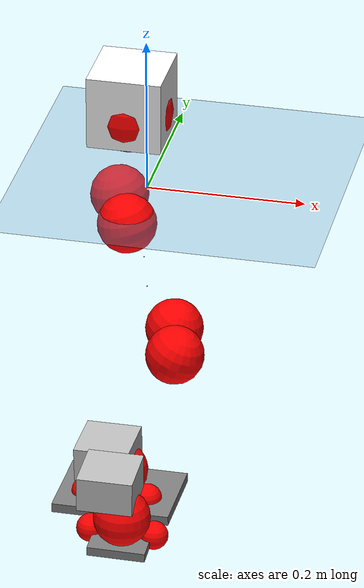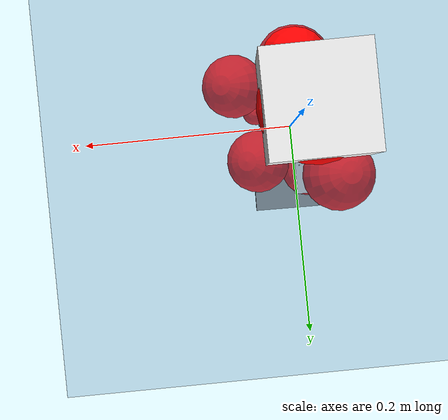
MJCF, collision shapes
<mujoco model="pi_12dof_release_v1">
  <compiler angle="radian" assetdir="assets" balanceinertia="true" inertiafromgeom="false"/>

  <option timestep="0.005" density="1.2" viscosity="2e-05"/>

  <size nkey="1"/>

  <visual>
    <quality shadowsize="8192"/>
    <map shadowclip="0.5"/>
  </visual>

  <default>
    <default class="/">
      <joint armature="0.01" damping="0.01" frictionloss="0.01"/>
      <geom contype="0" conaffinity="0" group="1" solref="-1000 -80"/>
      <site size="0.01 0.005 0.005" group="5"/>
      <general forcelimited="true" biastype="affine" gainprm="20" biasprm="0 -20 -0.5"/>
      <default class="foot">
        <geom size="0.0845 0.036 0.005" type="box" condim="6" group="4" priority="1" friction="0.9 0.2 0.2" solimp="0.015 1 0.005"/>
      </default>
      <default class="reward_collision_sphere">
        <geom group="5" rgba="1 0 0 1"/>
      </default>
    </default>
  </default>

  <asset>
    <texture type="skybox" colorspace="auto" name="//unnamed_texture_0" builtin="gradient" rgb1="0.95 0.95 0.95" rgb2="0.95 0.95 0.95" width="100" height="600"/>
    <texture type="2d" colorspace="auto" name="texplane" builtin="checker" rgb1="0.345 0.575 0.748" rgb2="0.345 0.575 0.748" markrgb="1 1 1" width="512" height="512"/>
    <material name="MatPlane" class="/" texture="texplane" texuniform="true" texrepeat="2 2" specular="0.9"/>
    <mesh name="baselink_1" class="/" file="baselink_1.STL"/>
    <mesh name="r_hip_pitch_link" class="/" file="r_hip_pitch_link.STL"/>
    <mesh name="r_hip_roll_link" class="/" file="r_hip_roll_link.STL"/>
    <mesh name="r_thigh_link" class="/" file="r_thigh_link.STL"/>
    <mesh name="r_calf_link" class="/" file="r_calf_link.STL"/>
    <mesh name="r_ankle_pitch_link" class="/" file="r_ankle_pitch_link.STL"/>
    <mesh name="r_ankle_roll_link" class="/" file="r_ankle_roll_link.STL"/>
    <mesh name="l_hip_pitch_link" class="/" file="l_hip_pitch_link.STL"/>
    <mesh name="l_hip_roll_link" class="/" file="l_hip_roll_link.STL"/>
    <mesh name="l_thigh_link" class="/" file="l_thigh_link.STL"/>
    <mesh name="l_calf_link" class="/" file="l_calf_link.STL"/>
    <mesh name="l_ankle_pitch_link" class="/" file="l_ankle_pitch_link.STL"/>
    <mesh name="l_ankle_roll_link" class="/" file="l_ankle_roll_link.STL"/>
  </asset>

  <worldbody>
    <geom name="floor" class="/" size="100 100 0.125" type="plane" group="0" material="MatPlane"/>
    <light name="toplight_shadow" class="/" pos="0 0 5" dir="0.0990148 0.0990148 -0.990148" type="directional" ambient="0.04 0.04 0.04" diffuse="0.55 0.55 0.55" specular="0.12 0.12 0.12"/>
    <light name="toplight_fill" class="/" pos="0 0 5" dir="0.0990148 0.0990148 -0.990148" type="directional" castshadow="false" ambient="0.04 0.04 0.04" diffuse="0.3 0.3 0.3" specular="0.08 0.08 0.08"/>
    <body name="trunk" pos="-0.0165554 -0.00980285 0.00483016" quat="0.999993 -0.00354686 0.000161269 0.00150392">
      <inertial pos="0.00103891 0.00477228 0.0607231" quat="0.653561 0.0179508 -0.00167843 0.756659" mass="1.72326" diaginertia="0.000565768 0.000871882 0.0302691"/>
      <joint name="//unnamed_joint_0" type="free"/>
      <geom name="//unnamed_geom_1" class="/" type="mesh" density="0" rgba="1 1 1 1" mesh="baselink_1"/>
      <geom name="//unnamed_geom_2" class="/" size="0.0466488 0.0466488 0.0466488" pos="0 0 0.120221" type="box" rgba="1 1 1 1"/>
      <geom name="//unnamed_geom_3" class="reward_collision_sphere" size="0.0513137" pos="0 0 0.105193"/>
      <site name="imu" class="/" pos="-0.040916 0.0302207 0.0903428" size="0.00932975"/>
      <camera name="track" class="/" pos="0 -1.35517 0" quat="0.707107 0.707107 0 0" mode="trackcom"/>
      <camera name="ego_camera" class="/" pos="0.0463935 0 0.270497" quat="-0.5 -0.5 0.5 0.5"/>
      <body name="r_hip_pitch_link" pos="-0.00460655 -0.0179236 -0.0374077" quat="0.992188 -0.00267955 -0.124506 0.00735274">
        <inertial pos="0.0180469 -0.0274393 0.00256877" quat="-0.0261981 0.70943 -0.0371845 0.703307" mass="0.344395" diaginertia="1.12511e-05 1.72743e-05 0.000716759"/>
        <joint name="r_hip_pitch_joint" class="/" pos="0 0 0" axis="0.00529147 -0.99708 -0.0761774" stiffness="0.0264813" range="-2.0977 0.984983" armature="0.00972739" damping="0" frictionloss="0.00881303"/>
        <geom name="//unnamed_geom_4" class="/" type="mesh" density="0" rgba="0.75294 0.75294 0.75294 1" mesh="r_hip_pitch_link"/>
        <geom name="//unnamed_geom_5" class="/" size="0.000466488 0.000466488 0.000466488" type="box" rgba="0.75294 0.75294 0.75294 1"/>
        <body name="r_hip_roll_link" pos="0.0131159 -0.0366154 0.011698" quat="0.999987 0.00431916 0.000693069 -0.00276493">
          <inertial pos="0.0035765 0.000437934 -0.0728066" quat="0.69863 -0.0415641 -0.120495 0.704038" mass="0.332521" diaginertia="3.21519e-05 4.46339e-05 0.0011481"/>
          <joint name="r_hip_roll_joint" class="/" pos="0 0 0" axis="-0.996987 0.0693602 0.034729" range="-0.233239 0.170417" armature="0.00394427" damping="0.056289" frictionloss="0.0158617"/>
          <geom name="//unnamed_geom_6" class="/" type="mesh" density="0" rgba="0.75294 0.75294 0.75294 1" mesh="r_hip_roll_link"/>
          <geom name="//unnamed_geom_7" class="/" size="0.000466488 0.000466488 0.000466488" type="box" rgba="0.75294 0.75294 0.75294 1"/>
          <geom name="//unnamed_geom_8" class="reward_collision_sphere" size="0.037319"/>
          <body name="r_thigh_link" pos="-0.00391445 0.0189793 -0.0998598" quat="0.999976 -0.00408764 0.00374337 0.0041698">
            <inertial pos="-0.010935 0.00835287 -0.069266" quat="0.706346 0.703723 -0.0412578 0.0644009" mass="0.0651683" diaginertia="1.12807e-05 1.10577e-05 0.000448102"/>
            <joint name="r_thigh_joint" class="/" pos="0 0 0" axis="-0.048713 0.0363988 -0.998149" stiffness="0.0905955" range="-0.579409 0.235721" armature="0.00781504" damping="0" frictionloss="0.0143531"/>
            <geom name="//unnamed_geom_9" class="/" type="mesh" density="0" rgba="0.75294 0.75294 0.75294 1" mesh="r_thigh_link"/>
            <geom name="//unnamed_geom_10" class="/" size="0.000466488 0.000466488 0.000466488" type="box" rgba="0.75294 0.75294 0.75294 1"/>
            <body name="r_calf_link" pos="0.0187079 -0.02007 -0.0902613" quat="0.947879 -0.000985678 0.318624 0.00181487">
              <inertial pos="-0.0184842 -0.00894364 -0.087674" quat="0.998221 0.055636 0.0209644 -0.00441064" mass="0.474276" diaginertia="0.000262078 0.000452674 0.00103918"/>
              <joint name="r_calf_joint" class="/" pos="0 0 0" axis="-0.0867209 -0.99623 0.00224579" stiffness="0.0552923" range="-1.55167 0.644173" armature="0.0045857" damping="0.0361752" frictionloss="0.0123545"/>
              <geom name="//unnamed_geom_11" class="/" type="mesh" density="0" rgba="0.75294 0.75294 0.75294 1" mesh="r_calf_link"/>
              <geom name="//unnamed_geom_12" class="/" size="0.000466488 0.000466488 0.000466488" type="box" rgba="0.75294 0.75294 0.75294 1"/>
              <geom name="//unnamed_geom_13" class="reward_collision_sphere" size="0.037319"/>
              <body name="r_ankle_pitch_link" pos="0.00237509 0.00854556 -0.222683" quat="0.98014 0.000330782 -0.1983 0.00128223">
                <inertial pos="0.0142771 -0.0171308 -0.00813495" quat="0.00309404 0.706558 0.00636007 0.70762" mass="0.127495" diaginertia="2.71096e-05 2.58518e-05 0.000824173"/>
                <joint name="r_ankle_pitch_joint" class="/" pos="0 0 0" axis="-0.0220965 -0.997832 -0.0619962" range="-1.50516 0.521079" armature="0.0158853" damping="0" frictionloss="0.0158138"/>
                <geom name="//unnamed_geom_14" class="/" type="mesh" density="0" rgba="0.75294 0.75294 0.75294 1" mesh="r_ankle_pitch_link"/>
                <geom name="//unnamed_geom_15" class="/" size="0.036386 0.037319 0.0233244" type="box" rgba="0.75294 0.75294 0.75294 1"/>
                <body name="r_ankle_roll_link" pos="0.0484958 -0.0065994 -0.0157808" quat="0.999958 -0.00405541 0.00734705 0.00379563">
                  <inertial pos="-0.0343527 0.0132292 -0.0373226" quat="0.585684 0.428332 0.428963 0.538049" mass="0.543262" diaginertia="9.48759e-05 0.000127177 0.0018016"/>
                  <joint name="r_ankle_roll_joint" class="/" pos="0 0 0" axis="-0.995719 -0.0300118 0.0874236" stiffness="0.0628219" range="-0.210443 0.277323" armature="0.0055635" damping="0" frictionloss="0.0122898"/>
                  <geom name="//unnamed_geom_16" class="/" type="mesh" density="0" rgba="0.75294 0.75294 0.75294 1" mesh="r_ankle_roll_link"/>
                  <geom name="//unnamed_geom_17" class="/" type="mesh" rgba="0.75294 0.75294 0.75294 1" mesh="r_ankle_roll_link"/>
                  <geom name="right_foot" class="foot" size="0.0378626 0.0344913 0.00590745" pos="-0.0315475 0 -0.0661215"/>
                  <geom name="//unnamed_geom_19" class="reward_collision_sphere" size="0.037319" pos="-0.030929 0 -0.0300552"/>
                  <geom name="//unnamed_geom_20" class="reward_collision_sphere" size="0.0186595" pos="0.00927869 0.0135517 -0.0601104"/>
                  <geom name="//unnamed_geom_21" class="reward_collision_sphere" size="0.0186595" pos="-0.0742295 0.0135517 -0.0601104"/>
                  <site name="right_foot" class="foot" pos="-0.0315475 0 -0.0661215" size="0.00932975"/>
                </body>
              </body>
            </body>
          </body>
        </body>
      </body>
      <body name="l_hip_pitch_link" pos="-0.0199047 0.0320614 -0.0427549" quat="0.991857 0.00251341 -0.127318 -0.00207509">
        <inertial pos="-0.0171682 0.0561489 -0.0025538" quat="-0.0139851 0.682831 0.101017 0.723424" mass="0.371278" diaginertia="1.31961e-05 1.51427e-05 0.000954216"/>
        <joint name="l_hip_pitch_joint" class="/" pos="0 0 0" axis="0.0812551 0.99528 0.0530668" stiffness="0.0835155" range="-0.903866 1.63263" armature="0.0171121" damping="0" frictionloss="0.00416817"/>
        <geom name="//unnamed_geom_22" class="/" type="mesh" density="0" rgba="0.75294 0.75294 0.75294 1" mesh="l_hip_pitch_link"/>
        <geom name="//unnamed_geom_23" class="/" size="0.000466488 0.000466488 0.000466488" type="box" rgba="0.75294 0.75294 0.75294 1"/>
        <body name="l_hip_roll_link" pos="-0.0117991 0.0287996 -0.00137623" quat="0.999989 0.00303007 -0.00349798 -0.00115088">
          <inertial pos="-0.00854911 -0.0178592 -0.0958132" quat="0.721096 -0.0909897 -0.137379 0.672955" mass="0.23664" diaginertia="2.90709e-05 3.0832e-05 0.00100499"/>
          <joint name="l_hip_roll_joint" class="/" pos="0 0 0" axis="-0.998327 -0.0173011 0.0551693" stiffness="0.0633316" range="-0.383879 -0.104867" armature="0.00136654" damping="0.0618444" frictionloss="0.01499"/>
          <geom name="//unnamed_geom_24" class="/" type="mesh" density="0" rgba="0.75294 0.75294 0.75294 1" mesh="l_hip_roll_link"/>
          <geom name="//unnamed_geom_25" class="/" size="0.000466488 0.000466488 0.000466488" type="box" rgba="0.75294 0.75294 0.75294 1"/>
          <geom name="//unnamed_geom_26" class="reward_collision_sphere" size="0.037319"/>
          <body name="l_thigh_link" pos="0.0127315 -0.015295 -0.0853548" quat="0.999955 -0.00645575 0.00465868 -0.00509921">
            <inertial pos="-0.00535844 0.000154438 -0.0911984" quat="0.633081 0.773869 0.00461515 -0.0177161" mass="0.107209" diaginertia="1.14405e-05 1.48022e-05 0.000409018"/>
            <joint name="l_thigh_joint" class="/" pos="0 0 0" axis="-0.0453618 -0.00414201 -0.998962" range="-0.24808 0.394154" armature="0.00726307" damping="0.0708762" frictionloss="0.00685033"/>
            <geom name="//unnamed_geom_27" class="/" type="mesh" density="0" rgba="0.75294 0.75294 0.75294 1" mesh="l_thigh_link"/>
            <geom name="//unnamed_geom_28" class="/" size="0.000466488 0.000466488 0.000466488" type="box" rgba="0.75294 0.75294 0.75294 1"/>
            <body name="l_calf_link" pos="0.0177564 -0.0102136 -0.0999377" quat="0.948943 0.000810608 0.315439 0.00206782">
              <inertial pos="-0.0139168 -0.00898542 -0.10714" quat="0.9961 -0.0284554 0.0834427 0.00340397" mass="0.706355" diaginertia="0.000293359 0.000453186 0.0012197"/>
              <joint name="l_calf_joint" class="/" pos="0 0 0" axis="0.0207971 0.99667 0.0788502" range="-0.923002 1.45564" armature="0.0089022" damping="0" frictionloss="0.0166103"/>
              <geom name="//unnamed_geom_29" class="/" type="mesh" density="0" rgba="0.75294 0.75294 0.75294 1" mesh="l_calf_link"/>
              <geom name="//unnamed_geom_30" class="/" size="0.000466488 0.000466488 0.000466488" type="box" rgba="0.75294 0.75294 0.75294 1"/>
              <geom name="//unnamed_geom_31" class="reward_collision_sphere" size="0.037319"/>
              <body name="l_ankle_pitch_link" pos="-0.0055961 0.00789293 -0.22691" quat="0.979346 -0.00146447 -0.202166 -0.0028728">
                <inertial pos="-0.00501333 0.00400663 -0.0085827" quat="-0.0675124 0.702064 -0.0669903 0.705734" mass="0.150659" diaginertia="2.81789e-05 2.45571e-05 0.000670837"/>
                <joint name="l_ankle_pitch_joint" class="/" pos="0 0 0" axis="-0.00337662 0.998946 0.0457824" range="-0.772679 1.04331" armature="0.013611" damping="0.0727515" frictionloss="0.00608486"/>
                <geom name="//unnamed_geom_32" class="/" type="mesh" density="0" rgba="0.75294 0.75294 0.75294 1" mesh="l_ankle_pitch_link"/>
                <geom name="//unnamed_geom_33" class="/" size="0.036386 0.037319 0.0233244" type="box" rgba="0.75294 0.75294 0.75294 1"/>
                <body name="l_ankle_roll_link" pos="0.0453467 0.00353963 0.00505903" quat="0.999999 0.000974356 0.0011888 0.000193279">
                  <inertial pos="0.00164037 0.0186053 -0.0393599" quat="0.563939 0.410305 0.442751 0.563555" mass="0.361039" diaginertia="0.000127523 0.000125646 0.00225833"/>
                  <joint name="l_ankle_roll_joint" class="/" pos="0 0 0" axis="-0.999078 0.042308 -0.00735326" range="-0.304561 0.408456" armature="0.00619686" damping="0" frictionloss="0.00171093"/>
                  <geom name="//unnamed_geom_34" class="/" type="mesh" density="0" rgba="0.75294 0.75294 0.75294 1" mesh="l_ankle_roll_link"/>
                  <geom name="//unnamed_geom_35" class="/" type="mesh" rgba="0.75294 0.75294 0.75294 1" mesh="l_ankle_roll_link"/>
                  <geom name="left_foot" class="foot" size="0.0780297 0.0544318 0.00632253" pos="-0.0315475 0 -0.0661215"/>
                  <geom name="//unnamed_geom_37" class="reward_collision_sphere" size="0.037319" pos="-0.030929 0 -0.0300552"/>
                  <geom name="//unnamed_geom_38" class="reward_collision_sphere" size="0.0186595" pos="0.00927869 -0.0135517 -0.0601104"/>
                  <geom name="//unnamed_geom_39" class="reward_collision_sphere" size="0.0186595" pos="-0.0742295 -0.0135517 -0.0601104"/>
                  <site name="left_foot" class="foot" pos="-0.0315475 0 -0.0661215" size="0.00932975"/>
                </body>
              </body>
            </body>
          </body>
        </body>
      </body>
    </body>
  </worldbody>

  <contact>
    <pair class="/" geom1="floor" geom2="right_foot" name="//unnamed_contact_1"/>
    <pair class="/" geom1="floor" geom2="left_foot" name="//unnamed_contact_0"/>
  </contact>

  <actuator>
    <general name="r_hip_pitch_joint" class="/" joint="r_hip_pitch_joint" forcerange="-11.8757 11.8757" gainprm="16.1458" biasprm="0 -16.1458 -0.522273"/>
    <general name="r_hip_roll_joint" class="/" joint="r_hip_roll_joint" forcerange="-7.13264 7.13264" gainprm="16.1458" biasprm="0 -16.1458 -0.522273"/>
    <general name="r_thigh_joint" class="/" joint="r_thigh_joint" forcerange="-26.7987 26.7987" gainprm="16.1458" biasprm="0 -16.1458 -0.522273"/>
    <general name="r_calf_joint" class="/" joint="r_calf_joint" forcerange="-6.13871 6.13871" gainprm="16.1458" biasprm="0 -16.1458 -0.522273"/>
    <general name="r_ankle_pitch_joint" class="/" joint="r_ankle_pitch_joint" forcerange="-25.4583 25.4583" gainprm="16.1458" biasprm="0 -16.1458 -0.522273"/>
    <general name="r_ankle_roll_joint" class="/" joint="r_ankle_roll_joint" forcerange="-13.2287 13.2287" gainprm="16.1458" biasprm="0 -16.1458 -0.522273"/>
    <general name="l_hip_pitch_joint" class="/" joint="l_hip_pitch_joint" forcerange="-19.2229 19.2229" gainprm="16.1458" biasprm="0 -16.1458 -0.522273"/>
    <general name="l_hip_roll_joint" class="/" joint="l_hip_roll_joint" forcerange="-31.0991 31.0991" gainprm="16.1458" biasprm="0 -16.1458 -0.522273"/>
    <general name="l_thigh_joint" class="/" joint="l_thigh_joint" forcerange="-12.0516 12.0516" gainprm="16.1458" biasprm="0 -16.1458 -0.522273"/>
    <general name="l_calf_joint" class="/" joint="l_calf_joint" forcerange="-18.6616 18.6616" gainprm="16.1458" biasprm="0 -16.1458 -0.522273"/>
    <general name="l_ankle_pitch_joint" class="/" joint="l_ankle_pitch_joint" forcerange="-15.3326 15.3326" gainprm="16.1458" biasprm="0 -16.1458 -0.522273"/>
    <general name="l_ankle_roll_joint" class="/" joint="l_ankle_roll_joint" forcerange="-10.4932 10.4932" gainprm="16.1458" biasprm="0 -16.1458 -0.522273"/>
  </actuator>

  <sensor>
    <gyro site="imu" name="imu_angular_velocity"/>
    <velocimeter site="imu" name="imu_linear_velocity"/>
    <framelinvel objtype="site" objname="left_foot" name="left_foot_global_linear_velocity"/>
    <framelinvel objtype="site" objname="right_foot" name="right_foot_global_linear_velocity"/>
  </sensor>

  <keyframe>
    <key name="home" qpos="0 0 0.291 1 0 0 0 0.4 0 0 -0.8 0.4 0 -0.4 0 0 0.8 -0.4 0"/>
  </keyframe>
</mujoco>
